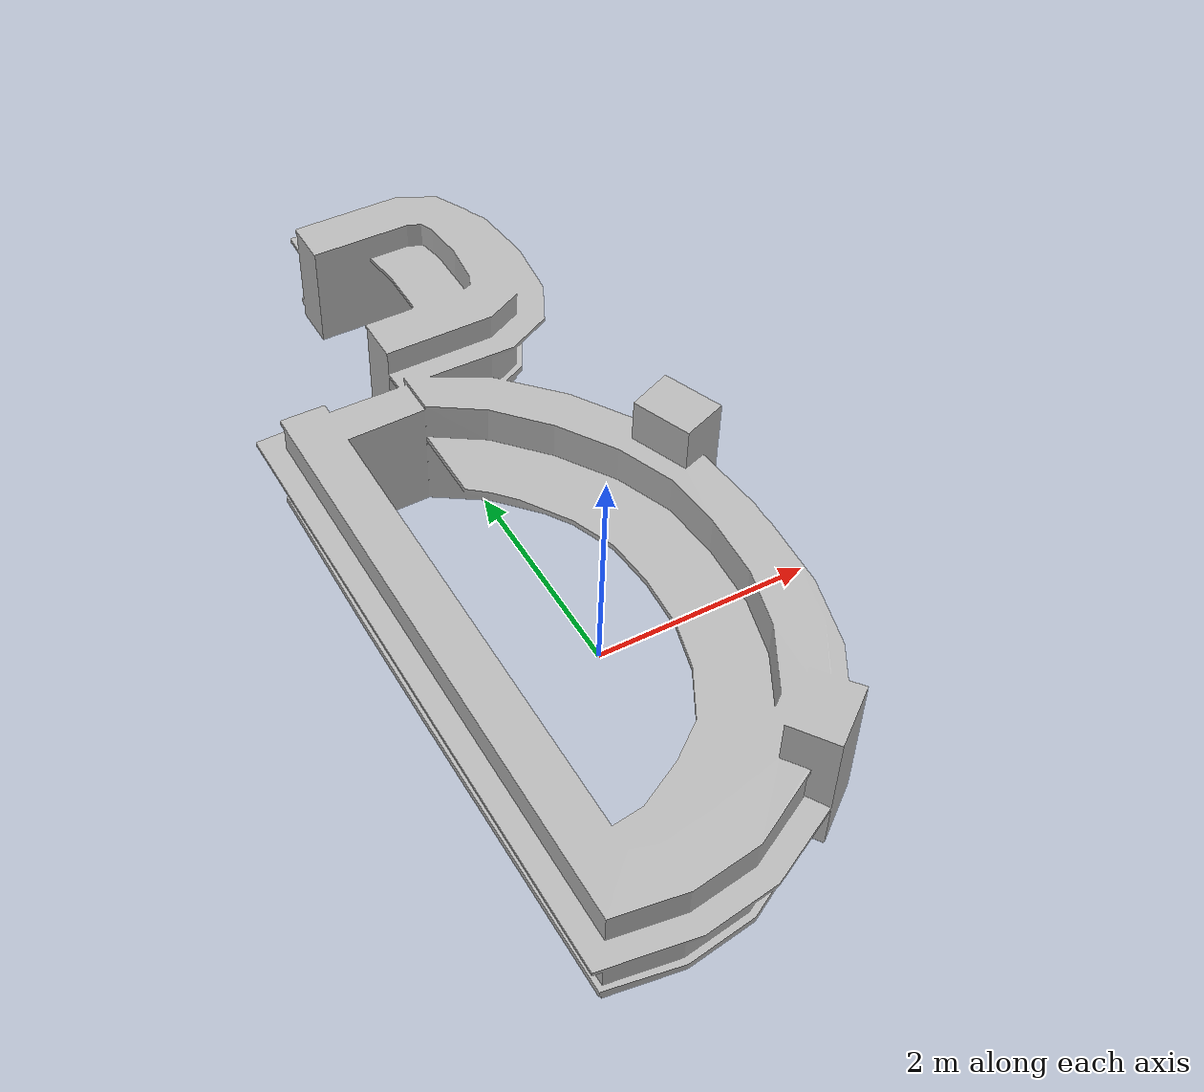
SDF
<sdf version="1.6">
  <model name="InformationCounter">
   <static>true</static>
    <link name="body">
      <pose>0 0 0 0 0 0</pose>

      <visual name="visual">
        <geometry>
          <mesh>
            <uri>model://InformationCounter/meshes/InformationCounter.obj</uri>
          </mesh>
        </geometry>
      </visual>

      <collision name="collision">
        <geometry>
          <mesh>
            <uri>model://InformationCounter/meshes/InformationCounter_Col.obj</uri>
          </mesh>
        </geometry>
      </collision>

    </link>
  </model>
</sdf>
